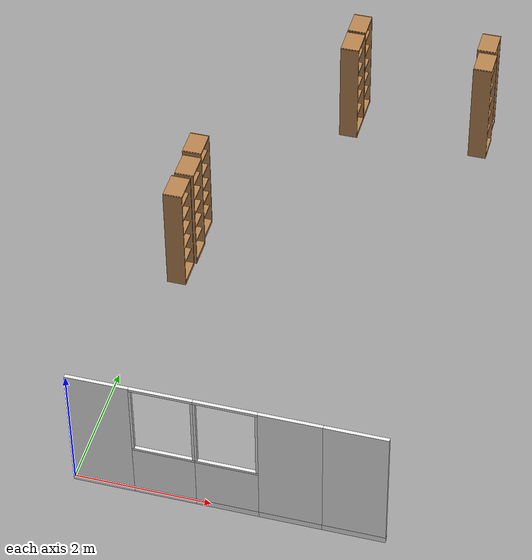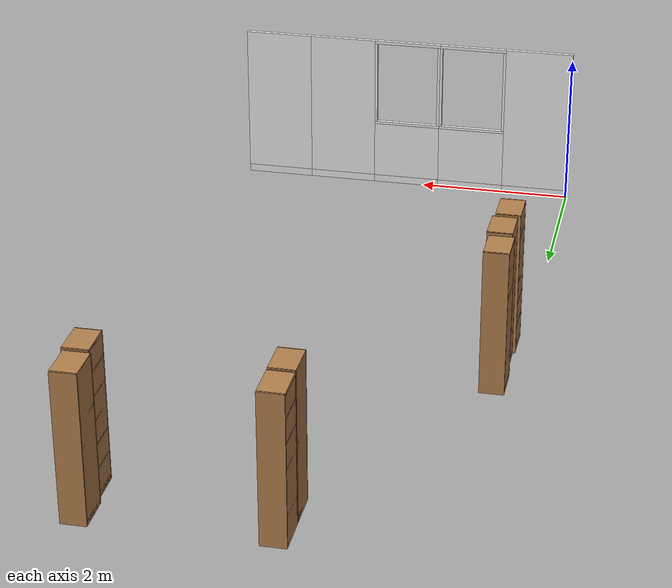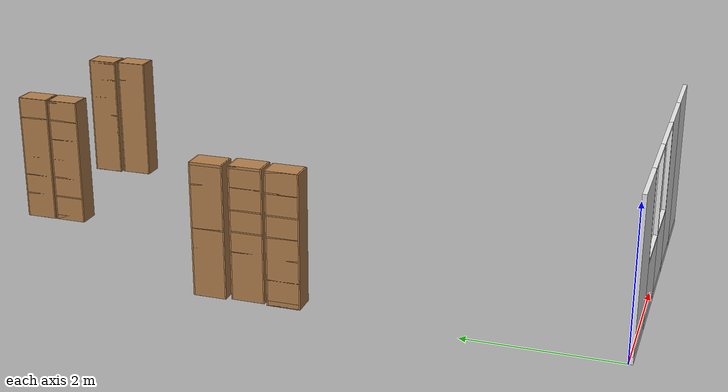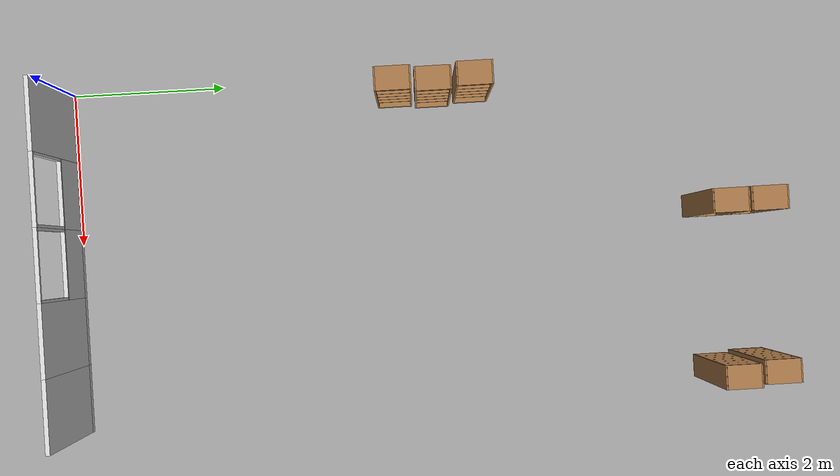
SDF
<sdf version="1.6">
 <world name="robocup_apartment">
  <model name="wall_x01y00">
   <link name="link">
    <inertial>
     <mass>50</mass>
     <inertia><ixx>1</ixx><ixy>0</ixy><ixz>0</ixz><iyy>1</iyy><iyz>0</iyz><izz>1</izz></inertia>
    </inertial>
    <visual name="bottom_frame">
     <pose>0 0 0.05 0 -0 0</pose>
     <geometry><box><size>0.055 0.9 0.1</size></box></geometry>
     <material>
      <script><uri>model://base_materials/color/scripts</uri><name>hsr_color/white</name></script>
     </material>
    </visual>
    <visual name="wall">
     <pose>0 0 1.095 0 -0 0</pose>
     <geometry><box><size>0.055 0.9 1.99</size></box></geometry>
     <material>
      <script>
       <uri>model://base_materials/wall/scripts</uri>
       <uri>model://base_materials/wall/textures</uri>
       <name>wall/white_noise</name>
      </script>
     </material>
    </visual>
    <velocity_decay><linear>0</linear><angular>0</angular></velocity_decay>
   </link>
   <static>1</static>
   <pose>0.45 -0.0275 0 0 -0 1.5708</pose>
  </model>
  <model name="wall_x02y00">
   <link name="link">
    <inertial>
     <mass>50</mass>
     <inertia><ixx>1</ixx><ixy>0</ixy><ixz>0</ixz><iyy>1</iyy><iyz>0</iyz><izz>1</izz></inertia>
    </inertial>
    <visual name="bottom_frame">
     <pose>0 0 0.05 0 -0 0</pose>
     <geometry><box><size>0.055 0.9 0.1</size></box></geometry>
     <material>
      <script><uri>model://base_materials/color/scripts</uri><name>hsr_color/white</name></script>
     </material>
    </visual>
    <visual name="wall">
     <pose>0 0 0.4875 0 -0 0</pose>
     <geometry><box><size>0.055 0.9 0.775</size></box></geometry>
     <material>
      <script>
       <uri>model://base_materials/wall/scripts</uri>
       <uri>model://base_materials/wall/textures</uri>
       <name>wall/white_noise</name>
      </script>
     </material>
    </visual>
    <visual name="center_frame">
     <pose>0 0 0.8925 0 -0 0</pose>
     <geometry><box><size>0.055 0.9 0.035</size></box></geometry>
     <material>
      <script><uri>model://base_materials/color/scripts</uri><name>hsr_color/white</name></script>
     </material>
    </visual>
    <visual name="right_frame">
     <pose>0 0.4325 1.48 0 -0 0</pose>
     <geometry><box><size>0.055 0.035 1.14</size></box></geometry>
     <material>
      <script><uri>model://base_materials/color/scripts</uri><name>hsr_color/white</name></script>
     </material>
    </visual>
    <visual name="left_frame">
     <pose>0 -0.4325 1.48 0 -0 0</pose>
     <geometry><box><size>0.055 0.035 1.14</size></box></geometry>
     <material>
      <script><uri>model://base_materials/color/scripts</uri><name>hsr_color/white</name></script>
     </material>
    </visual>
    <visual name="top_frame">
     <pose>0 0 2.07 0 -0 0</pose>
     <geometry><box><size>0.055 0.9 0.04</size></box></geometry>
     <material>
      <script><uri>model://base_materials/color/scripts</uri><name>hsr_color/white</name></script>
     </material>
    </visual>
    <velocity_decay><linear>0</linear><angular>0</angular></velocity_decay>
   </link>
   <static>1</static>
   <pose>1.35 -0.0275 0 0 -0 1.5708</pose>
  </model>
  <model name="wall_x03y00">
   <link name="link">
    <inertial>
     <mass>50</mass>
     <inertia><ixx>1</ixx><ixy>0</ixy><ixz>0</ixz><iyy>1</iyy><iyz>0</iyz><izz>1</izz></inertia>
    </inertial>
    <visual name="bottom_frame">
     <pose>0 0 0.05 0 -0 0</pose>
     <geometry><box><size>0.055 0.9 0.1</size></box></geometry>
     <material>
      <script><uri>model://base_materials/color/scripts</uri><name>hsr_color/white</name></script>
     </material>
    </visual>
    <visual name="wall">
     <pose>0 0 0.4875 0 -0 0</pose>
     <geometry><box><size>0.055 0.9 0.775</size></box></geometry>
     <material>
      <script>
       <uri>model://base_materials/wall/scripts</uri>
       <uri>model://base_materials/wall/textures</uri>
       <name>wall/white_noise</name>
      </script>
     </material>
    </visual>
    <visual name="center_frame">
     <pose>0 0 0.8925 0 -0 0</pose>
     <geometry><box><size>0.055 0.9 0.035</size></box></geometry>
     <material>
      <script><uri>model://base_materials/color/scripts</uri><name>hsr_color/white</name></script>
     </material>
    </visual>
    <visual name="right_frame">
     <pose>0 0.4325 1.48 0 -0 0</pose>
     <geometry><box><size>0.055 0.035 1.14</size></box></geometry>
     <material>
      <script><uri>model://base_materials/color/scripts</uri><name>hsr_color/white</name></script>
     </material>
    </visual>
    <visual name="left_frame">
     <pose>0 -0.4325 1.48 0 -0 0</pose>
     <geometry><box><size>0.055 0.035 1.14</size></box></geometry>
     <material>
      <script><uri>model://base_materials/color/scripts</uri><name>hsr_color/white</name></script>
     </material>
    </visual>
    <visual name="top_frame">
     <pose>0 0 2.07 0 -0 0</pose>
     <geometry><box><size>0.055 0.9 0.04</size></box></geometry>
     <material>
      <script><uri>model://base_materials/color/scripts</uri><name>hsr_color/white</name></script>
     </material>
    </visual>
    <velocity_decay><linear>0</linear><angular>0</angular></velocity_decay>
   </link>
   <static>1</static>
   <pose>2.25 -0.0275 0 0 -0 1.5708</pose>
  </model>
  <model name="wall_x04y00">
   <link name="link">
    <inertial>
     <mass>50</mass>
     <inertia><ixx>1</ixx><ixy>0</ixy><ixz>0</ixz><iyy>1</iyy><iyz>0</iyz><izz>1</izz></inertia>
    </inertial>
    <visual name="bottom_frame">
     <pose>0 0 0.05 0 -0 0</pose>
     <geometry><box><size>0.055 0.9 0.1</size></box></geometry>
     <material>
      <script><uri>model://base_materials/color/scripts</uri><name>hsr_color/white</name></script>
     </material>
    </visual>
    <visual name="wall">
     <pose>0 0 1.095 0 -0 0</pose>
     <geometry><box><size>0.055 0.9 1.99</size></box></geometry>
     <material>
      <script>
       <uri>model://base_materials/wall/scripts</uri>
       <uri>model://base_materials/wall/textures</uri>
       <name>wall/white_noise</name>
      </script>
     </material>
    </visual>
    <velocity_decay><linear>0</linear><angular>0</angular></velocity_decay>
   </link>
   <static>1</static>
   <pose>3.15 -0.0275 0 0 -0 1.5708</pose>
  </model>
  <model name="wall_x05y00">
   <link name="link">
    <inertial>
     <mass>50</mass>
     <inertia><ixx>1</ixx><ixy>0</ixy><ixz>0</ixz><iyy>1</iyy><iyz>0</iyz><izz>1</izz></inertia>
    </inertial>
    <visual name="bottom_frame">
     <pose>0 0 0.05 0 -0 0</pose>
     <geometry><box><size>0.055 0.9 0.1</size></box></geometry>
     <material>
      <script><uri>model://base_materials/color/scripts</uri><name>hsr_color/white</name></script>
     </material>
    </visual>
    <visual name="wall">
     <pose>0 0 1.095 0 -0 0</pose>
     <geometry><box><size>0.055 0.9 1.99</size></box></geometry>
     <material>
      <script>
       <uri>model://base_materials/wall/scripts</uri>
       <uri>model://base_materials/wall/textures</uri>
       <name>wall/white_noise</name>
      </script>
     </material>
    </visual>
    <velocity_decay><linear>0</linear><angular>0</angular></velocity_decay>
   </link>
   <static>1</static>
   <pose>4.05 -0.0275 0 0 -0 1.5708</pose>
  </model>
  <model name="high_shelf05_clone_5">
   <link name="link">
    <inertial>
     <mass>5</mass>
     <inertia><ixx>1</ixx><ixy>0</ixy><ixz>0</ixz><iyy>1</iyy><iyz>0</iyz><izz>1</izz></inertia>
    </inertial>
    <visual name="left_board">
     <pose>-0.1475 0.009 0.898 0 -0 0</pose>
     <geometry><box><size>0.295 0.018 1.796</size></box></geometry>
     <material>
      <script>
       <uri>model://base_materials/wood/scripts</uri>
       <uri>model://base_materials/wood/textures</uri>
       <name>base_materials/light_wood</name>
      </script>
     </material>
    </visual>
    <collision name="collision_left_board">
     <pose>-0.1475 0.009 0.898 0 -0 0</pose>
     <geometry><box><size>0.295 0.018 1.796</size></box></geometry>
    </collision>
    <visual name="right_board">
     <pose>-0.1475 0.441 0.898 0 -0 0</pose>
     <geometry><box><size>0.295 0.018 1.796</size></box></geometry>
     <material>
      <script>
       <uri>model://base_materials/wood/scripts</uri>
       <uri>model://base_materials/wood/textures</uri>
       <name>base_materials/light_wood</name>
      </script>
     </material>
    </visual>
    <collision name="collision_right_board">
     <pose>-0.1475 0.441 0.898 0 -0 0</pose>
     <geometry><box><size>0.295 0.018 1.796</size></box></geometry>
    </collision>
    <visual name="top_board">
     <pose>-0.1475 0.225 1.7825 0 -0 0</pose>
     <geometry><box><size>0.295 0.414 0.035</size></box></geometry>
     <material>
      <script>
       <uri>model://base_materials/wood/scripts</uri>
       <uri>model://base_materials/wood/textures</uri>
       <name>base_materials/light_wood</name>
      </script>
     </material>
    </visual>
    <collision name="collision_top_board">
     <pose>-0.1475 0.225 1.7825 0 -0 0</pose>
     <geometry><box><size>0.295 0.414 0.035</size></box></geometry>
    </collision>
    <visual name="1st_shelf">
     <pose>-0.162 0.225 1.51 0 -0 0</pose>
     <geometry><box><size>0.266 0.414 0.018</size></box></geometry>
     <material>
      <script>
       <uri>model://base_materials/wood/scripts</uri>
       <uri>model://base_materials/wood/textures</uri>
       <name>base_materials/light_wood</name>
      </script>
     </material>
    </visual>
    <collision name="collision_1st_shelf">
     <pose>-0.162 0.225 1.51 0 -0 0</pose>
     <geometry><box><size>0.266 0.414 0.018</size></box></geometry>
    </collision>
    <visual name="2nd_shelf">
     <pose>-0.162 0.225 1.22 0 -0 0</pose>
     <geometry><box><size>0.266 0.414 0.018</size></box></geometry>
     <material>
      <script>
       <uri>model://base_materials/wood/scripts</uri>
       <uri>model://base_materials/wood/textures</uri>
       <name>base_materials/light_wood</name>
      </script>
     </material>
    </visual>
    <collision name="collision_2nd_shelf">
     <pose>-0.162 0.225 1.22 0 -0 0</pose>
     <geometry><box><size>0.266 0.414 0.018</size></box></geometry>
    </collision>
    <visual name="3rd_shelf">
     <pose>-0.162 0.225 0.93 0 -0 0</pose>
     <geometry><box><size>0.266 0.414 0.018</size></box></geometry>
     <material>
      <script>
       <uri>model://base_materials/wood/scripts</uri>
       <uri>model://base_materials/wood/textures</uri>
       <name>base_materials/light_wood</name>
      </script>
     </material>
    </visual>
    <collision name="collision_3rd_shelf">
     <pose>-0.162 0.225 0.93 0 -0 0</pose>
     <geometry><box><size>0.266 0.414 0.018</size></box></geometry>
    </collision>
    <visual name="4th_shelf">
     <pose>-0.162 0.225 0.65 0 -0 0</pose>
     <geometry><box><size>0.266 0.414 0.018</size></box></geometry>
     <material>
      <script>
       <uri>model://base_materials/wood/scripts</uri>
       <uri>model://base_materials/wood/textures</uri>
       <name>base_materials/light_wood</name>
      </script>
     </material>
    </visual>
    <collision name="collision_4th_shelf">
     <pose>-0.162 0.225 0.65 0 -0 0</pose>
     <geometry><box><size>0.266 0.414 0.018</size></box></geometry>
    </collision>
    <visual name="5th_shelf">
     <pose>-0.162 0.225 0.36 0 -0 0</pose>
     <geometry><box><size>0.266 0.414 0.018</size></box></geometry>
     <material>
      <script>
       <uri>model://base_materials/wood/scripts</uri>
       <uri>model://base_materials/wood/textures</uri>
       <name>base_materials/light_wood</name>
      </script>
     </material>
    </visual>
    <collision name="collision_5th_shelf">
     <pose>-0.162 0.225 0.36 0 -0 0</pose>
     <geometry><box><size>0.266 0.414 0.018</size></box></geometry>
    </collision>
    <visual name="bottom_board">
     <pose>-0.1475 0.225 0.035 0 -0 0</pose>
     <geometry><box><size>0.295 0.414 0.07</size></box></geometry>
     <material>
      <script>
       <uri>model://base_materials/wood/scripts</uri>
       <uri>model://base_materials/wood/textures</uri>
       <name>base_materials/light_wood</name>
      </script>
     </material>
    </visual>
    <collision name="collision_bottom_board">
     <pose>-0.1475 0.225 0.035 0 -0 0</pose>
     <geometry><box><size>0.295 0.414 0.07</size></box></geometry>
    </collision>
    <visual name="back_board">
     <pose>-0.286 0.225 0.898 0 -0 0</pose>
     <geometry><box><size>0.018 0.414 1.796</size></box></geometry>
     <material>
      <script>
       <uri>model://base_materials/wood/scripts</uri>
       <uri>model://base_materials/wood/textures</uri>
       <name>base_materials/light_wood</name>
      </script>
     </material>
    </visual>
    <collision name="collision_back_board">
     <pose>-0.286 0.225 0.898 0 -0 0</pose>
     <geometry><box><size>0.018 0.414 1.796</size></box></geometry>
    </collision>
    <velocity_decay><linear>0</linear><angular>0</angular></velocity_decay>
   </link>
   <static>1</static>
   <pose>2.09396 8.51224 0 0 -0 0</pose>
  </model>
  <model name="high_shelf05_clone_6">
   <link name="link">
    <inertial>
     <mass>5</mass>
     <inertia><ixx>1</ixx><ixy>0</ixy><ixz>0</ixz><iyy>1</iyy><iyz>0</iyz><izz>1</izz></inertia>
    </inertial>
    <visual name="left_board">
     <pose>-0.1475 0.009 0.898 0 -0 0</pose>
     <geometry><box><size>0.295 0.018 1.796</size></box></geometry>
     <material>
      <script>
       <uri>model://base_materials/wood/scripts</uri>
       <uri>model://base_materials/wood/textures</uri>
       <name>base_materials/light_wood</name>
      </script>
     </material>
    </visual>
    <collision name="collision_left_board">
     <pose>-0.1475 0.009 0.898 0 -0 0</pose>
     <geometry><box><size>0.295 0.018 1.796</size></box></geometry>
    </collision>
    <visual name="right_board">
     <pose>-0.1475 0.441 0.898 0 -0 0</pose>
     <geometry><box><size>0.295 0.018 1.796</size></box></geometry>
     <material>
      <script>
       <uri>model://base_materials/wood/scripts</uri>
       <uri>model://base_materials/wood/textures</uri>
       <name>base_materials/light_wood</name>
      </script>
     </material>
    </visual>
    <collision name="collision_right_board">
     <pose>-0.1475 0.441 0.898 0 -0 0</pose>
     <geometry><box><size>0.295 0.018 1.796</size></box></geometry>
    </collision>
    <visual name="top_board">
     <pose>-0.1475 0.225 1.7825 0 -0 0</pose>
     <geometry><box><size>0.295 0.414 0.035</size></box></geometry>
     <material>
      <script>
       <uri>model://base_materials/wood/scripts</uri>
       <uri>model://base_materials/wood/textures</uri>
       <name>base_materials/light_wood</name>
      </script>
     </material>
    </visual>
    <collision name="collision_top_board">
     <pose>-0.1475 0.225 1.7825 0 -0 0</pose>
     <geometry><box><size>0.295 0.414 0.035</size></box></geometry>
    </collision>
    <visual name="1st_shelf">
     <pose>-0.162 0.225 1.51 0 -0 0</pose>
     <geometry><box><size>0.266 0.414 0.018</size></box></geometry>
     <material>
      <script>
       <uri>model://base_materials/wood/scripts</uri>
       <uri>model://base_materials/wood/textures</uri>
       <name>base_materials/light_wood</name>
      </script>
     </material>
    </visual>
    <collision name="collision_1st_shelf">
     <pose>-0.162 0.225 1.51 0 -0 0</pose>
     <geometry><box><size>0.266 0.414 0.018</size></box></geometry>
    </collision>
    <visual name="2nd_shelf">
     <pose>-0.162 0.225 1.22 0 -0 0</pose>
     <geometry><box><size>0.266 0.414 0.018</size></box></geometry>
     <material>
      <script>
       <uri>model://base_materials/wood/scripts</uri>
       <uri>model://base_materials/wood/textures</uri>
       <name>base_materials/light_wood</name>
      </script>
     </material>
    </visual>
    <collision name="collision_2nd_shelf">
     <pose>-0.162 0.225 1.22 0 -0 0</pose>
     <geometry><box><size>0.266 0.414 0.018</size></box></geometry>
    </collision>
    <visual name="3rd_shelf">
     <pose>-0.162 0.225 0.93 0 -0 0</pose>
     <geometry><box><size>0.266 0.414 0.018</size></box></geometry>
     <material>
      <script>
       <uri>model://base_materials/wood/scripts</uri>
       <uri>model://base_materials/wood/textures</uri>
       <name>base_materials/light_wood</name>
      </script>
     </material>
    </visual>
    <collision name="collision_3rd_shelf">
     <pose>-0.162 0.225 0.93 0 -0 0</pose>
     <geometry><box><size>0.266 0.414 0.018</size></box></geometry>
    </collision>
    <visual name="4th_shelf">
     <pose>-0.162 0.225 0.65 0 -0 0</pose>
     <geometry><box><size>0.266 0.414 0.018</size></box></geometry>
     <material>
      <script>
       <uri>model://base_materials/wood/scripts</uri>
       <uri>model://base_materials/wood/textures</uri>
       <name>base_materials/light_wood</name>
      </script>
     </material>
    </visual>
    <collision name="collision_4th_shelf">
     <pose>-0.162 0.225 0.65 0 -0 0</pose>
     <geometry><box><size>0.266 0.414 0.018</size></box></geometry>
    </collision>
    <visual name="5th_shelf">
     <pose>-0.162 0.225 0.36 0 -0 0</pose>
     <geometry><box><size>0.266 0.414 0.018</size></box></geometry>
     <material>
      <script>
       <uri>model://base_materials/wood/scripts</uri>
       <uri>model://base_materials/wood/textures</uri>
       <name>base_materials/light_wood</name>
      </script>
     </material>
    </visual>
    <collision name="collision_5th_shelf">
     <pose>-0.162 0.225 0.36 0 -0 0</pose>
     <geometry><box><size>0.266 0.414 0.018</size></box></geometry>
    </collision>
    <visual name="bottom_board">
     <pose>-0.1475 0.225 0.035 0 -0 0</pose>
     <geometry><box><size>0.295 0.414 0.07</size></box></geometry>
     <material>
      <script>
       <uri>model://base_materials/wood/scripts</uri>
       <uri>model://base_materials/wood/textures</uri>
       <name>base_materials/light_wood</name>
      </script>
     </material>
    </visual>
    <collision name="collision_bottom_board">
     <pose>-0.1475 0.225 0.035 0 -0 0</pose>
     <geometry><box><size>0.295 0.414 0.07</size></box></geometry>
    </collision>
    <visual name="back_board">
     <pose>-0.286 0.225 0.898 0 -0 0</pose>
     <geometry><box><size>0.018 0.414 1.796</size></box></geometry>
     <material>
      <script>
       <uri>model://base_materials/wood/scripts</uri>
       <uri>model://base_materials/wood/textures</uri>
       <name>base_materials/light_wood</name>
      </script>
     </material>
    </visual>
    <collision name="collision_back_board">
     <pose>-0.286 0.225 0.898 0 -0 0</pose>
     <geometry><box><size>0.018 0.414 1.796</size></box></geometry>
    </collision>
    <velocity_decay><linear>0</linear><angular>0</angular></velocity_decay>
   </link>
   <static>1</static>
   <pose>2.09534 8.04454 0 0 -0 0</pose>
  </model>
  <model name="high_shelf05_clone_11">
   <link name="link">
    <inertial>
     <mass>5</mass>
     <inertia><ixx>1</ixx><ixy>0</ixy><ixz>0</ixz><iyy>1</iyy><iyz>0</iyz><izz>1</izz></inertia>
    </inertial>
    <visual name="left_board">
     <pose>-0.1475 0.009 0.898 0 -0 0</pose>
     <geometry><box><size>0.295 0.018 1.796</size></box></geometry>
     <material>
      <script>
       <uri>model://base_materials/wood/scripts</uri>
       <uri>model://base_materials/wood/textures</uri>
       <name>base_materials/light_wood</name>
      </script>
     </material>
    </visual>
    <collision name="collision_left_board">
     <pose>-0.1475 0.009 0.898 0 -0 0</pose>
     <geometry><box><size>0.295 0.018 1.796</size></box></geometry>
    </collision>
    <visual name="right_board">
     <pose>-0.1475 0.441 0.898 0 -0 0</pose>
     <geometry><box><size>0.295 0.018 1.796</size></box></geometry>
     <material>
      <script>
       <uri>model://base_materials/wood/scripts</uri>
       <uri>model://base_materials/wood/textures</uri>
       <name>base_materials/light_wood</name>
      </script>
     </material>
    </visual>
    <collision name="collision_right_board">
     <pose>-0.1475 0.441 0.898 0 -0 0</pose>
     <geometry><box><size>0.295 0.018 1.796</size></box></geometry>
    </collision>
    <visual name="top_board">
     <pose>-0.1475 0.225 1.7825 0 -0 0</pose>
     <geometry><box><size>0.295 0.414 0.035</size></box></geometry>
     <material>
      <script>
       <uri>model://base_materials/wood/scripts</uri>
       <uri>model://base_materials/wood/textures</uri>
       <name>base_materials/light_wood</name>
      </script>
     </material>
    </visual>
    <collision name="collision_top_board">
     <pose>-0.1475 0.225 1.7825 0 -0 0</pose>
     <geometry><box><size>0.295 0.414 0.035</size></box></geometry>
    </collision>
    <visual name="1st_shelf">
     <pose>-0.162 0.225 1.51 0 -0 0</pose>
     <geometry><box><size>0.266 0.414 0.018</size></box></geometry>
     <material>
      <script>
       <uri>model://base_materials/wood/scripts</uri>
       <uri>model://base_materials/wood/textures</uri>
       <name>base_materials/light_wood</name>
      </script>
     </material>
    </visual>
    <collision name="collision_1st_shelf">
     <pose>-0.162 0.225 1.51 0 -0 0</pose>
     <geometry><box><size>0.266 0.414 0.018</size></box></geometry>
    </collision>
    <visual name="2nd_shelf">
     <pose>-0.162 0.225 1.22 0 -0 0</pose>
     <geometry><box><size>0.266 0.414 0.018</size></box></geometry>
     <material>
      <script>
       <uri>model://base_materials/wood/scripts</uri>
       <uri>model://base_materials/wood/textures</uri>
       <name>base_materials/light_wood</name>
      </script>
     </material>
    </visual>
    <collision name="collision_2nd_shelf">
     <pose>-0.162 0.225 1.22 0 -0 0</pose>
     <geometry><box><size>0.266 0.414 0.018</size></box></geometry>
    </collision>
    <visual name="3rd_shelf">
     <pose>-0.162 0.225 0.93 0 -0 0</pose>
     <geometry><box><size>0.266 0.414 0.018</size></box></geometry>
     <material>
      <script>
       <uri>model://base_materials/wood/scripts</uri>
       <uri>model://base_materials/wood/textures</uri>
       <name>base_materials/light_wood</name>
      </script>
     </material>
    </visual>
    <collision name="collision_3rd_shelf">
     <pose>-0.162 0.225 0.93 0 -0 0</pose>
     <geometry><box><size>0.266 0.414 0.018</size></box></geometry>
    </collision>
    <visual name="4th_shelf">
     <pose>-0.162 0.225 0.65 0 -0 0</pose>
     <geometry><box><size>0.266 0.414 0.018</size></box></geometry>
     <material>
      <script>
       <uri>model://base_materials/wood/scripts</uri>
       <uri>model://base_materials/wood/textures</uri>
       <name>base_materials/light_wood</name>
      </script>
     </material>
    </visual>
    <collision name="collision_4th_shelf">
     <pose>-0.162 0.225 0.65 0 -0 0</pose>
     <geometry><box><size>0.266 0.414 0.018</size></box></geometry>
    </collision>
    <visual name="5th_shelf">
     <pose>-0.162 0.225 0.36 0 -0 0</pose>
     <geometry><box><size>0.266 0.414 0.018</size></box></geometry>
     <material>
      <script>
       <uri>model://base_materials/wood/scripts</uri>
       <uri>model://base_materials/wood/textures</uri>
       <name>base_materials/light_wood</name>
      </script>
     </material>
    </visual>
    <collision name="collision_5th_shelf">
     <pose>-0.162 0.225 0.36 0 -0 0</pose>
     <geometry><box><size>0.266 0.414 0.018</size></box></geometry>
    </collision>
    <visual name="bottom_board">
     <pose>-0.1475 0.225 0.035 0 -0 0</pose>
     <geometry><box><size>0.295 0.414 0.07</size></box></geometry>
     <material>
      <script>
       <uri>model://base_materials/wood/scripts</uri>
       <uri>model://base_materials/wood/textures</uri>
       <name>base_materials/light_wood</name>
      </script>
     </material>
    </visual>
    <collision name="collision_bottom_board">
     <pose>-0.1475 0.225 0.035 0 -0 0</pose>
     <geometry><box><size>0.295 0.414 0.07</size></box></geometry>
    </collision>
    <visual name="back_board">
     <pose>-0.286 0.225 0.898 0 -0 0</pose>
     <geometry><box><size>0.018 0.414 1.796</size></box></geometry>
     <material>
      <script>
       <uri>model://base_materials/wood/scripts</uri>
       <uri>model://base_materials/wood/textures</uri>
       <name>base_materials/light_wood</name>
      </script>
     </material>
    </visual>
    <collision name="collision_back_board">
     <pose>-0.286 0.225 0.898 0 -0 0</pose>
     <geometry><box><size>0.018 0.414 1.796</size></box></geometry>
    </collision>
    <velocity_decay><linear>0</linear><angular>0</angular></velocity_decay>
   </link>
   <static>1</static>
   <pose>4.19115 8.55373 0 0 -0 0</pose>
  </model>
  <model name="high_shelf05_clone_12">
   <link name="link">
    <inertial>
     <mass>5</mass>
     <inertia><ixx>1</ixx><ixy>0</ixy><ixz>0</ixz><iyy>1</iyy><iyz>0</iyz><izz>1</izz></inertia>
    </inertial>
    <visual name="left_board">
     <pose>-0.1475 0.009 0.898 0 -0 0</pose>
     <geometry><box><size>0.295 0.018 1.796</size></box></geometry>
     <material>
      <script>
       <uri>model://base_materials/wood/scripts</uri>
       <uri>model://base_materials/wood/textures</uri>
       <name>base_materials/light_wood</name>
      </script>
     </material>
    </visual>
    <collision name="collision_left_board">
     <pose>-0.1475 0.009 0.898 0 -0 0</pose>
     <geometry><box><size>0.295 0.018 1.796</size></box></geometry>
    </collision>
    <visual name="right_board">
     <pose>-0.1475 0.441 0.898 0 -0 0</pose>
     <geometry><box><size>0.295 0.018 1.796</size></box></geometry>
     <material>
      <script>
       <uri>model://base_materials/wood/scripts</uri>
       <uri>model://base_materials/wood/textures</uri>
       <name>base_materials/light_wood</name>
      </script>
     </material>
    </visual>
    <collision name="collision_right_board">
     <pose>-0.1475 0.441 0.898 0 -0 0</pose>
     <geometry><box><size>0.295 0.018 1.796</size></box></geometry>
    </collision>
    <visual name="top_board">
     <pose>-0.1475 0.225 1.7825 0 -0 0</pose>
     <geometry><box><size>0.295 0.414 0.035</size></box></geometry>
     <material>
      <script>
       <uri>model://base_materials/wood/scripts</uri>
       <uri>model://base_materials/wood/textures</uri>
       <name>base_materials/light_wood</name>
      </script>
     </material>
    </visual>
    <collision name="collision_top_board">
     <pose>-0.1475 0.225 1.7825 0 -0 0</pose>
     <geometry><box><size>0.295 0.414 0.035</size></box></geometry>
    </collision>
    <visual name="1st_shelf">
     <pose>-0.162 0.225 1.51 0 -0 0</pose>
     <geometry><box><size>0.266 0.414 0.018</size></box></geometry>
     <material>
      <script>
       <uri>model://base_materials/wood/scripts</uri>
       <uri>model://base_materials/wood/textures</uri>
       <name>base_materials/light_wood</name>
      </script>
     </material>
    </visual>
    <collision name="collision_1st_shelf">
     <pose>-0.162 0.225 1.51 0 -0 0</pose>
     <geometry><box><size>0.266 0.414 0.018</size></box></geometry>
    </collision>
    <visual name="2nd_shelf">
     <pose>-0.162 0.225 1.22 0 -0 0</pose>
     <geometry><box><size>0.266 0.414 0.018</size></box></geometry>
     <material>
      <script>
       <uri>model://base_materials/wood/scripts</uri>
       <uri>model://base_materials/wood/textures</uri>
       <name>base_materials/light_wood</name>
      </script>
     </material>
    </visual>
    <collision name="collision_2nd_shelf">
     <pose>-0.162 0.225 1.22 0 -0 0</pose>
     <geometry><box><size>0.266 0.414 0.018</size></box></geometry>
    </collision>
    <visual name="3rd_shelf">
     <pose>-0.162 0.225 0.93 0 -0 0</pose>
     <geometry><box><size>0.266 0.414 0.018</size></box></geometry>
     <material>
      <script>
       <uri>model://base_materials/wood/scripts</uri>
       <uri>model://base_materials/wood/textures</uri>
       <name>base_materials/light_wood</name>
      </script>
     </material>
    </visual>
    <collision name="collision_3rd_shelf">
     <pose>-0.162 0.225 0.93 0 -0 0</pose>
     <geometry><box><size>0.266 0.414 0.018</size></box></geometry>
    </collision>
    <visual name="4th_shelf">
     <pose>-0.162 0.225 0.65 0 -0 0</pose>
     <geometry><box><size>0.266 0.414 0.018</size></box></geometry>
     <material>
      <script>
       <uri>model://base_materials/wood/scripts</uri>
       <uri>model://base_materials/wood/textures</uri>
       <name>base_materials/light_wood</name>
      </script>
     </material>
    </visual>
    <collision name="collision_4th_shelf">
     <pose>-0.162 0.225 0.65 0 -0 0</pose>
     <geometry><box><size>0.266 0.414 0.018</size></box></geometry>
    </collision>
    <visual name="5th_shelf">
     <pose>-0.162 0.225 0.36 0 -0 0</pose>
     <geometry><box><size>0.266 0.414 0.018</size></box></geometry>
     <material>
      <script>
       <uri>model://base_materials/wood/scripts</uri>
       <uri>model://base_materials/wood/textures</uri>
       <name>base_materials/light_wood</name>
      </script>
     </material>
    </visual>
    <collision name="collision_5th_shelf">
     <pose>-0.162 0.225 0.36 0 -0 0</pose>
     <geometry><box><size>0.266 0.414 0.018</size></box></geometry>
    </collision>
    <visual name="bottom_board">
     <pose>-0.1475 0.225 0.035 0 -0 0</pose>
     <geometry><box><size>0.295 0.414 0.07</size></box></geometry>
     <material>
      <script>
       <uri>model://base_materials/wood/scripts</uri>
       <uri>model://base_materials/wood/textures</uri>
       <name>base_materials/light_wood</name>
      </script>
     </material>
    </visual>
    <collision name="collision_bottom_board">
     <pose>-0.1475 0.225 0.035 0 -0 0</pose>
     <geometry><box><size>0.295 0.414 0.07</size></box></geometry>
    </collision>
    <visual name="back_board">
     <pose>-0.286 0.225 0.898 0 -0 0</pose>
     <geometry><box><size>0.018 0.414 1.796</size></box></geometry>
     <material>
      <script>
       <uri>model://base_materials/wood/scripts</uri>
       <uri>model://base_materials/wood/textures</uri>
       <name>base_materials/light_wood</name>
      </script>
     </material>
    </visual>
    <collision name="collision_back_board">
     <pose>-0.286 0.225 0.898 0 -0 0</pose>
     <geometry><box><size>0.018 0.414 1.796</size></box></geometry>
    </collision>
    <velocity_decay><linear>0</linear><angular>0</angular></velocity_decay>
   </link>
   <static>1</static>
   <pose>4.22933 8.07852 0 0 -0 0</pose>
  </model>
  <model name="high_shelf05_clone_28">
   <link name="link">
    <inertial>
     <mass>5</mass>
     <inertia><ixx>1</ixx><ixy>0</ixy><ixz>0</ixz><iyy>1</iyy><iyz>0</iyz><izz>1</izz></inertia>
    </inertial>
    <visual name="left_board">
     <pose>-0.1475 0.009 0.898 0 -0 0</pose>
     <geometry><box><size>0.295 0.018 1.796</size></box></geometry>
     <material>
      <script>
       <uri>model://base_materials/wood/scripts</uri>
       <uri>model://base_materials/wood/textures</uri>
       <name>base_materials/light_wood</name>
      </script>
     </material>
    </visual>
    <collision name="collision_left_board">
     <pose>-0.1475 0.009 0.898 0 -0 0</pose>
     <geometry><box><size>0.295 0.018 1.796</size></box></geometry>
    </collision>
    <visual name="right_board">
     <pose>-0.1475 0.441 0.898 0 -0 0</pose>
     <geometry><box><size>0.295 0.018 1.796</size></box></geometry>
     <material>
      <script>
       <uri>model://base_materials/wood/scripts</uri>
       <uri>model://base_materials/wood/textures</uri>
       <name>base_materials/light_wood</name>
      </script>
     </material>
    </visual>
    <collision name="collision_right_board">
     <pose>-0.1475 0.441 0.898 0 -0 0</pose>
     <geometry><box><size>0.295 0.018 1.796</size></box></geometry>
    </collision>
    <visual name="top_board">
     <pose>-0.1475 0.225 1.7825 0 -0 0</pose>
     <geometry><box><size>0.295 0.414 0.035</size></box></geometry>
     <material>
      <script>
       <uri>model://base_materials/wood/scripts</uri>
       <uri>model://base_materials/wood/textures</uri>
       <name>base_materials/light_wood</name>
      </script>
     </material>
    </visual>
    <collision name="collision_top_board">
     <pose>-0.1475 0.225 1.7825 0 -0 0</pose>
     <geometry><box><size>0.295 0.414 0.035</size></box></geometry>
    </collision>
    <visual name="1st_shelf">
     <pose>-0.162 0.225 1.51 0 -0 0</pose>
     <geometry><box><size>0.266 0.414 0.018</size></box></geometry>
     <material>
      <script>
       <uri>model://base_materials/wood/scripts</uri>
       <uri>model://base_materials/wood/textures</uri>
       <name>base_materials/light_wood</name>
      </script>
     </material>
    </visual>
    <collision name="collision_1st_shelf">
     <pose>-0.162 0.225 1.51 0 -0 0</pose>
     <geometry><box><size>0.266 0.414 0.018</size></box></geometry>
    </collision>
    <visual name="2nd_shelf">
     <pose>-0.162 0.225 1.22 0 -0 0</pose>
     <geometry><box><size>0.266 0.414 0.018</size></box></geometry>
     <material>
      <script>
       <uri>model://base_materials/wood/scripts</uri>
       <uri>model://base_materials/wood/textures</uri>
       <name>base_materials/light_wood</name>
      </script>
     </material>
    </visual>
    <collision name="collision_2nd_shelf">
     <pose>-0.162 0.225 1.22 0 -0 0</pose>
     <geometry><box><size>0.266 0.414 0.018</size></box></geometry>
    </collision>
    <visual name="3rd_shelf">
     <pose>-0.162 0.225 0.93 0 -0 0</pose>
     <geometry><box><size>0.266 0.414 0.018</size></box></geometry>
     <material>
      <script>
       <uri>model://base_materials/wood/scripts</uri>
       <uri>model://base_materials/wood/textures</uri>
       <name>base_materials/light_wood</name>
      </script>
     </material>
    </visual>
    <collision name="collision_3rd_shelf">
     <pose>-0.162 0.225 0.93 0 -0 0</pose>
     <geometry><box><size>0.266 0.414 0.018</size></box></geometry>
    </collision>
    <visual name="4th_shelf">
     <pose>-0.162 0.225 0.65 0 -0 0</pose>
     <geometry><box><size>0.266 0.414 0.018</size></box></geometry>
     <material>
      <script>
       <uri>model://base_materials/wood/scripts</uri>
       <uri>model://base_materials/wood/textures</uri>
       <name>base_materials/light_wood</name>
      </script>
     </material>
    </visual>
    <collision name="collision_4th_shelf">
     <pose>-0.162 0.225 0.65 0 -0 0</pose>
     <geometry><box><size>0.266 0.414 0.018</size></box></geometry>
    </collision>
    <visual name="5th_shelf">
     <pose>-0.162 0.225 0.36 0 -0 0</pose>
     <geometry><box><size>0.266 0.414 0.018</size></box></geometry>
     <material>
      <script>
       <uri>model://base_materials/wood/scripts</uri>
       <uri>model://base_materials/wood/textures</uri>
       <name>base_materials/light_wood</name>
      </script>
     </material>
    </visual>
    <collision name="collision_5th_shelf">
     <pose>-0.162 0.225 0.36 0 -0 0</pose>
     <geometry><box><size>0.266 0.414 0.018</size></box></geometry>
    </collision>
    <visual name="bottom_board">
     <pose>-0.1475 0.225 0.035 0 -0 0</pose>
     <geometry><box><size>0.295 0.414 0.07</size></box></geometry>
     <material>
      <script>
       <uri>model://base_materials/wood/scripts</uri>
       <uri>model://base_materials/wood/textures</uri>
       <name>base_materials/light_wood</name>
      </script>
     </material>
    </visual>
    <collision name="collision_bottom_board">
     <pose>-0.1475 0.225 0.035 0 -0 0</pose>
     <geometry><box><size>0.295 0.414 0.07</size></box></geometry>
    </collision>
    <visual name="back_board">
     <pose>-0.286 0.225 0.898 0 -0 0</pose>
     <geometry><box><size>0.018 0.414 1.796</size></box></geometry>
     <material>
      <script>
       <uri>model://base_materials/wood/scripts</uri>
       <uri>model://base_materials/wood/textures</uri>
       <name>base_materials/light_wood</name>
      </script>
     </material>
    </visual>
    <collision name="collision_back_board">
     <pose>-0.286 0.225 0.898 0 -0 0</pose>
     <geometry><box><size>0.018 0.414 1.796</size></box></geometry>
    </collision>
    <velocity_decay><linear>0</linear><angular>0</angular></velocity_decay>
   </link>
   <static>1</static>
   <pose>0.386372 5.05401 0 0 -0 0</pose>
  </model>
  <model name="high_shelf05_clone_29">
   <link name="link">
    <inertial>
     <mass>5</mass>
     <inertia><ixx>1</ixx><ixy>0</ixy><ixz>0</ixz><iyy>1</iyy><iyz>0</iyz><izz>1</izz></inertia>
    </inertial>
    <visual name="left_board">
     <pose>-0.1475 0.009 0.898 0 -0 0</pose>
     <geometry><box><size>0.295 0.018 1.796</size></box></geometry>
     <material>
      <script>
       <uri>model://base_materials/wood/scripts</uri>
       <uri>model://base_materials/wood/textures</uri>
       <name>base_materials/light_wood</name>
      </script>
     </material>
    </visual>
    <collision name="collision_left_board">
     <pose>-0.1475 0.009 0.898 0 -0 0</pose>
     <geometry><box><size>0.295 0.018 1.796</size></box></geometry>
    </collision>
    <visual name="right_board">
     <pose>-0.1475 0.441 0.898 0 -0 0</pose>
     <geometry><box><size>0.295 0.018 1.796</size></box></geometry>
     <material>
      <script>
       <uri>model://base_materials/wood/scripts</uri>
       <uri>model://base_materials/wood/textures</uri>
       <name>base_materials/light_wood</name>
      </script>
     </material>
    </visual>
    <collision name="collision_right_board">
     <pose>-0.1475 0.441 0.898 0 -0 0</pose>
     <geometry><box><size>0.295 0.018 1.796</size></box></geometry>
    </collision>
    <visual name="top_board">
     <pose>-0.1475 0.225 1.7825 0 -0 0</pose>
     <geometry><box><size>0.295 0.414 0.035</size></box></geometry>
     <material>
      <script>
       <uri>model://base_materials/wood/scripts</uri>
       <uri>model://base_materials/wood/textures</uri>
       <name>base_materials/light_wood</name>
      </script>
     </material>
    </visual>
    <collision name="collision_top_board">
     <pose>-0.1475 0.225 1.7825 0 -0 0</pose>
     <geometry><box><size>0.295 0.414 0.035</size></box></geometry>
    </collision>
    <visual name="1st_shelf">
     <pose>-0.162 0.225 1.51 0 -0 0</pose>
     <geometry><box><size>0.266 0.414 0.018</size></box></geometry>
     <material>
      <script>
       <uri>model://base_materials/wood/scripts</uri>
       <uri>model://base_materials/wood/textures</uri>
       <name>base_materials/light_wood</name>
      </script>
     </material>
    </visual>
    <collision name="collision_1st_shelf">
     <pose>-0.162 0.225 1.51 0 -0 0</pose>
     <geometry><box><size>0.266 0.414 0.018</size></box></geometry>
    </collision>
    <visual name="2nd_shelf">
     <pose>-0.162 0.225 1.22 0 -0 0</pose>
     <geometry><box><size>0.266 0.414 0.018</size></box></geometry>
     <material>
      <script>
       <uri>model://base_materials/wood/scripts</uri>
       <uri>model://base_materials/wood/textures</uri>
       <name>base_materials/light_wood</name>
      </script>
     </material>
    </visual>
    <collision name="collision_2nd_shelf">
     <pose>-0.162 0.225 1.22 0 -0 0</pose>
     <geometry><box><size>0.266 0.414 0.018</size></box></geometry>
    </collision>
    <visual name="3rd_shelf">
     <pose>-0.162 0.225 0.93 0 -0 0</pose>
     <geometry><box><size>0.266 0.414 0.018</size></box></geometry>
     <material>
      <script>
       <uri>model://base_materials/wood/scripts</uri>
       <uri>model://base_materials/wood/textures</uri>
       <name>base_materials/light_wood</name>
      </script>
     </material>
    </visual>
    <collision name="collision_3rd_shelf">
     <pose>-0.162 0.225 0.93 0 -0 0</pose>
     <geometry><box><size>0.266 0.414 0.018</size></box></geometry>
    </collision>
    <visual name="4th_shelf">
     <pose>-0.162 0.225 0.65 0 -0 0</pose>
     <geometry><box><size>0.266 0.414 0.018</size></box></geometry>
     <material>
      <script>
       <uri>model://base_materials/wood/scripts</uri>
       <uri>model://base_materials/wood/textures</uri>
       <name>base_materials/light_wood</name>
      </script>
     </material>
    </visual>
    <collision name="collision_4th_shelf">
     <pose>-0.162 0.225 0.65 0 -0 0</pose>
     <geometry><box><size>0.266 0.414 0.018</size></box></geometry>
    </collision>
    <visual name="5th_shelf">
     <pose>-0.162 0.225 0.36 0 -0 0</pose>
     <geometry><box><size>0.266 0.414 0.018</size></box></geometry>
     <material>
      <script>
       <uri>model://base_materials/wood/scripts</uri>
       <uri>model://base_materials/wood/textures</uri>
       <name>base_materials/light_wood</name>
      </script>
     </material>
    </visual>
    <collision name="collision_5th_shelf">
     <pose>-0.162 0.225 0.36 0 -0 0</pose>
     <geometry><box><size>0.266 0.414 0.018</size></box></geometry>
    </collision>
    <visual name="bottom_board">
     <pose>-0.1475 0.225 0.035 0 -0 0</pose>
     <geometry><box><size>0.295 0.414 0.07</size></box></geometry>
     <material>
      <script>
       <uri>model://base_materials/wood/scripts</uri>
       <uri>model://base_materials/wood/textures</uri>
       <name>base_materials/light_wood</name>
      </script>
     </material>
    </visual>
    <collision name="collision_bottom_board">
     <pose>-0.1475 0.225 0.035 0 -0 0</pose>
     <geometry><box><size>0.295 0.414 0.07</size></box></geometry>
    </collision>
    <visual name="back_board">
     <pose>-0.286 0.225 0.898 0 -0 0</pose>
     <geometry><box><size>0.018 0.414 1.796</size></box></geometry>
     <material>
      <script>
       <uri>model://base_materials/wood/scripts</uri>
       <uri>model://base_materials/wood/textures</uri>
       <name>base_materials/light_wood</name>
      </script>
     </material>
    </visual>
    <collision name="collision_back_board">
     <pose>-0.286 0.225 0.898 0 -0 0</pose>
     <geometry><box><size>0.018 0.414 1.796</size></box></geometry>
    </collision>
    <velocity_decay><linear>0</linear><angular>0</angular></velocity_decay>
   </link>
   <static>1</static>
   <pose>0.420415 4.54595 0 0 -0 0</pose>
  </model>
  <model name="high_shelf05_clone_30">
   <link name="link">
    <inertial>
     <mass>5</mass>
     <inertia><ixx>1</ixx><ixy>0</ixy><ixz>0</ixz><iyy>1</iyy><iyz>0</iyz><izz>1</izz></inertia>
    </inertial>
    <visual name="left_board">
     <pose>-0.1475 0.009 0.898 0 -0 0</pose>
     <geometry><box><size>0.295 0.018 1.796</size></box></geometry>
     <material>
      <script>
       <uri>model://base_materials/wood/scripts</uri>
       <uri>model://base_materials/wood/textures</uri>
       <name>base_materials/light_wood</name>
      </script>
     </material>
    </visual>
    <collision name="collision_left_board">
     <pose>-0.1475 0.009 0.898 0 -0 0</pose>
     <geometry><box><size>0.295 0.018 1.796</size></box></geometry>
    </collision>
    <visual name="right_board">
     <pose>-0.1475 0.441 0.898 0 -0 0</pose>
     <geometry><box><size>0.295 0.018 1.796</size></box></geometry>
     <material>
      <script>
       <uri>model://base_materials/wood/scripts</uri>
       <uri>model://base_materials/wood/textures</uri>
       <name>base_materials/light_wood</name>
      </script>
     </material>
    </visual>
    <collision name="collision_right_board">
     <pose>-0.1475 0.441 0.898 0 -0 0</pose>
     <geometry><box><size>0.295 0.018 1.796</size></box></geometry>
    </collision>
    <visual name="top_board">
     <pose>-0.1475 0.225 1.7825 0 -0 0</pose>
     <geometry><box><size>0.295 0.414 0.035</size></box></geometry>
     <material>
      <script>
       <uri>model://base_materials/wood/scripts</uri>
       <uri>model://base_materials/wood/textures</uri>
       <name>base_materials/light_wood</name>
      </script>
     </material>
    </visual>
    <collision name="collision_top_board">
     <pose>-0.1475 0.225 1.7825 0 -0 0</pose>
     <geometry><box><size>0.295 0.414 0.035</size></box></geometry>
    </collision>
    <visual name="1st_shelf">
     <pose>-0.162 0.225 1.51 0 -0 0</pose>
     <geometry><box><size>0.266 0.414 0.018</size></box></geometry>
     <material>
      <script>
       <uri>model://base_materials/wood/scripts</uri>
       <uri>model://base_materials/wood/textures</uri>
       <name>base_materials/light_wood</name>
      </script>
     </material>
    </visual>
    <collision name="collision_1st_shelf">
     <pose>-0.162 0.225 1.51 0 -0 0</pose>
     <geometry><box><size>0.266 0.414 0.018</size></box></geometry>
    </collision>
    <visual name="2nd_shelf">
     <pose>-0.162 0.225 1.22 0 -0 0</pose>
     <geometry><box><size>0.266 0.414 0.018</size></box></geometry>
     <material>
      <script>
       <uri>model://base_materials/wood/scripts</uri>
       <uri>model://base_materials/wood/textures</uri>
       <name>base_materials/light_wood</name>
      </script>
     </material>
    </visual>
    <collision name="collision_2nd_shelf">
     <pose>-0.162 0.225 1.22 0 -0 0</pose>
     <geometry><box><size>0.266 0.414 0.018</size></box></geometry>
    </collision>
    <visual name="3rd_shelf">
     <pose>-0.162 0.225 0.93 0 -0 0</pose>
     <geometry><box><size>0.266 0.414 0.018</size></box></geometry>
     <material>
      <script>
       <uri>model://base_materials/wood/scripts</uri>
       <uri>model://base_materials/wood/textures</uri>
       <name>base_materials/light_wood</name>
      </script>
     </material>
    </visual>
    <collision name="collision_3rd_shelf">
     <pose>-0.162 0.225 0.93 0 -0 0</pose>
     <geometry><box><size>0.266 0.414 0.018</size></box></geometry>
    </collision>
    <visual name="4th_shelf">
     <pose>-0.162 0.225 0.65 0 -0 0</pose>
     <geometry><box><size>0.266 0.414 0.018</size></box></geometry>
     <material>
      <script>
       <uri>model://base_materials/wood/scripts</uri>
       <uri>model://base_materials/wood/textures</uri>
       <name>base_materials/light_wood</name>
      </script>
     </material>
    </visual>
    <collision name="collision_4th_shelf">
     <pose>-0.162 0.225 0.65 0 -0 0</pose>
     <geometry><box><size>0.266 0.414 0.018</size></box></geometry>
    </collision>
    <visual name="5th_shelf">
     <pose>-0.162 0.225 0.36 0 -0 0</pose>
     <geometry><box><size>0.266 0.414 0.018</size></box></geometry>
     <material>
      <script>
       <uri>model://base_materials/wood/scripts</uri>
       <uri>model://base_materials/wood/textures</uri>
       <name>base_materials/light_wood</name>
      </script>
     </material>
    </visual>
    <collision name="collision_5th_shelf">
     <pose>-0.162 0.225 0.36 0 -0 0</pose>
     <geometry><box><size>0.266 0.414 0.018</size></box></geometry>
    </collision>
    <visual name="bottom_board">
     <pose>-0.1475 0.225 0.035 0 -0 0</pose>
     <geometry><box><size>0.295 0.414 0.07</size></box></geometry>
     <material>
      <script>
       <uri>model://base_materials/wood/scripts</uri>
       <uri>model://base_materials/wood/textures</uri>
       <name>base_materials/light_wood</name>
      </script>
     </material>
    </visual>
    <collision name="collision_bottom_board">
     <pose>-0.1475 0.225 0.035 0 -0 0</pose>
     <geometry><box><size>0.295 0.414 0.07</size></box></geometry>
    </collision>
    <visual name="back_board">
     <pose>-0.286 0.225 0.898 0 -0 0</pose>
     <geometry><box><size>0.018 0.414 1.796</size></box></geometry>
     <material>
      <script>
       <uri>model://base_materials/wood/scripts</uri>
       <uri>model://base_materials/wood/textures</uri>
       <name>base_materials/light_wood</name>
      </script>
     </material>
    </visual>
    <collision name="collision_back_board">
     <pose>-0.286 0.225 0.898 0 -0 0</pose>
     <geometry><box><size>0.018 0.414 1.796</size></box></geometry>
    </collision>
    <velocity_decay><linear>0</linear><angular>0</angular></velocity_decay>
   </link>
   <static>1</static>
   <pose>0.392185 4.05506 0 0 -0 0</pose>
  </model>
 </world>
</sdf>
